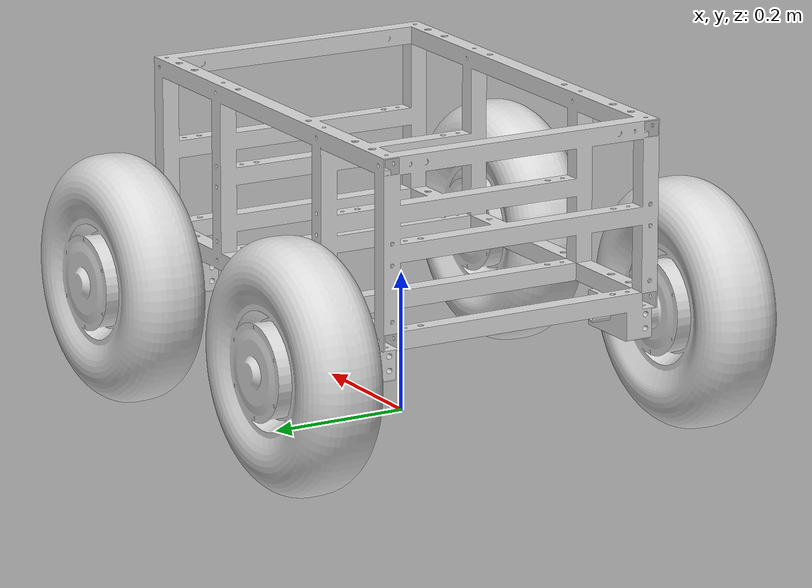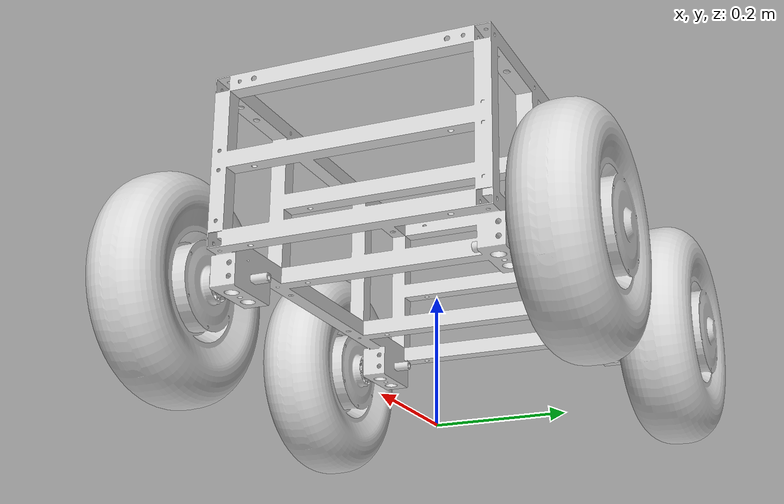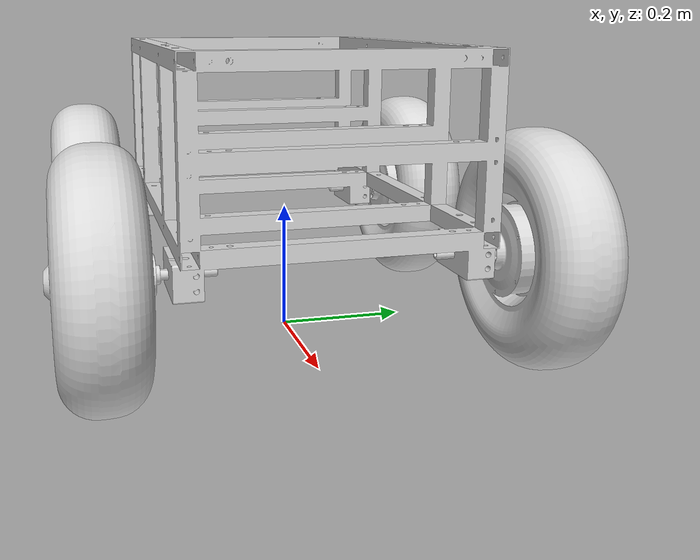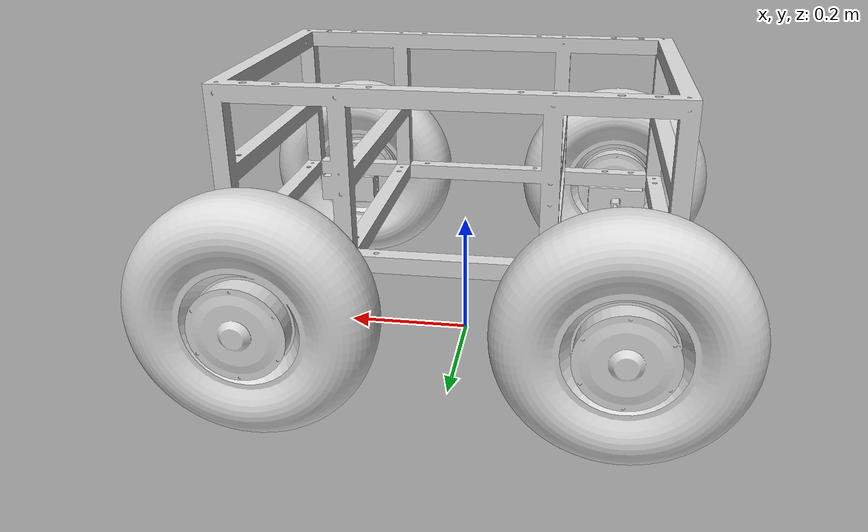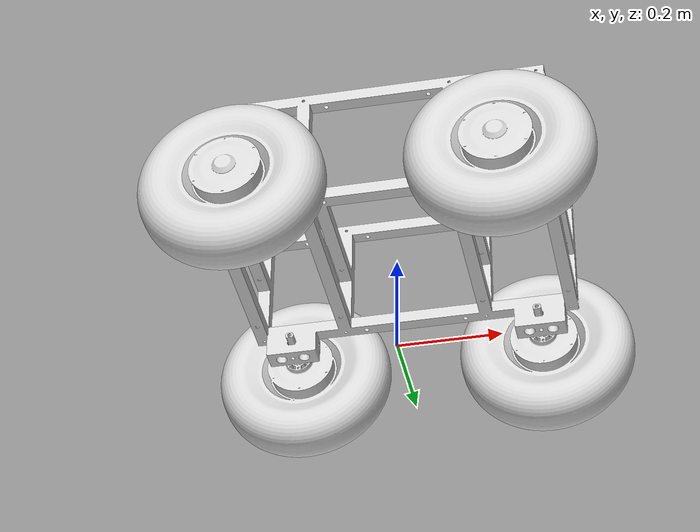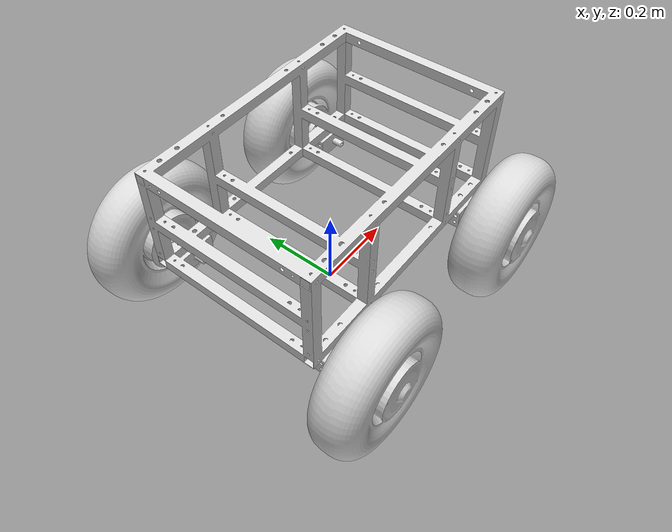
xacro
<?xml version="1.0"?>

<robot xmlns:xacro="http://ros.org/wiki/xacro" name="coroco" >
    <xacro:arg name="robot_namespace" default="/" />
    <xacro:arg name="urdf_extras" default="empty.urdf" />

    <xacro:include filename="$(find coroco_description)/urdf/coroco_wheel.xacro" />

    <!-- Variables -->
    <xacro:property name="M_PI" value="3.14159"/>

    <!-- Vehicle Geometries -->
    <xacro:property name="base_x_size" value="0.6500" />
    <xacro:property name="base_y_size" value="0.4400" />
    <xacro:property name="base_z_size" value="0.3100" />

    <xacro:property name="wheelbase" value="0.4960" />
    <xacro:property name="track" value="0.4600" />
    <xacro:property name="wheel_vertical_offset" value="-0.1575" />

    <xacro:property name="wheel_length" value="0.1150" />
    <xacro:property name="wheel_radius" value="0.1750" />

    <!-- static transform between /odom and /base_link -->
    <link name="odom"/>
    <joint name="odom_to_base_link=" type="fixed">
        <origin xyz="0 0 ${-wheel_vertical_offset + wheel_radius}" rpy="0 0 0" />
        <parent link="odom"/>
        <child link="base_link"/>
    </joint>

    <!-- Base link -->
    <link name="base_link">
        <visual>
            <origin xyz="0 0 0" rpy="0 0 0" />
            <geometry>
                <mesh filename="package://coroco_description/meshes/base_link.dae" />
            </geometry>
        </visual>
        <collision>
            <origin xyz="0 0 0.008" rpy="0 0 0" />
            <geometry>
                <box size="${base_x_size} ${base_y_size} ${base_z_size}"/>
            </geometry>
        </collision>
    </link>

    <link name="inertial_link">
        <inertial>
            <mass value="50" />
            <origin xyz="0.0 0.0 0.0" />
            <inertia ixx="2.288641" ixy="0" ixz="0" iyy="5.103976" iyz="0" izz="3.431465" />
        </inertial>
    </link>

    <joint name="inertial_joint" type="fixed">
        <origin xyz="0 0 0" rpy="0 0 0" />
        <parent link="base_link" />
        <child link="inertial_link" />
    </joint>

    <!-- For testing, hang the robot up in the air -->

    <!-- coroco wheel macros -->
    <!-- wheel labeled from 0 to 3, conter-clockwise, starting from front right wheel -->
    <!-- motor 1 and 2 (left side) are mechanically installed in a reversed direction -->
    <xacro:coroco_wheel wheel_prefix="front_right">
        <origin xyz="${wheelbase/2} ${-track/2} ${wheel_vertical_offset}" rpy="${M_PI} 0 0" />
    </xacro:coroco_wheel>
    <xacro:coroco_wheel wheel_prefix="front_left">
        <origin xyz="${wheelbase/2} ${track/2} ${wheel_vertical_offset}" rpy="0 0 0" />
    </xacro:coroco_wheel>
    <xacro:coroco_wheel wheel_prefix="rear_left">
        <origin xyz="${-wheelbase/2} ${track/2} ${wheel_vertical_offset}" rpy="0 0 0" />
    </xacro:coroco_wheel>
    <xacro:coroco_wheel wheel_prefix="rear_right">
        <origin xyz="${-wheelbase/2} ${-track/2} ${wheel_vertical_offset}" rpy="${M_PI} 0 0" />
    </xacro:coroco_wheel>

    <link name="front_mount" />

    <joint name="front_mount_joint" type="fixed">
        <origin xyz="0.325 0 0.112701" rpy="0 0 0" />
        <parent link="base_link" />
        <child link="front_mount" />
    </joint>

    <link name="rear_mount" />

    <joint name="rear_mount_joint" type="fixed">
        <origin xyz="-0.325 0 0.112701" rpy="0 0 0" />
        <parent link="base_link" />
        <child link="rear_mount" />
    </joint>

    <!-- Additional definitions -->
    <xacro:include filename="$(arg urdf_extras)" />

    <!-- Gazebo definitions  -->
    <xacro:include filename="$(find coroco_description)/urdf/coroco.gazebo" />
</robot>

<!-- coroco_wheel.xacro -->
<!--
 Created on Thu Oct 24 2024

 Author: Joonchen Liau
 Email: liaojuncheng123@foxmail.com

 Copyright (c) 2024 Tiante Intelligent Technology
-->

<robot xmlns:xacro="http://ros.org/wiki/xacro" name="coroco_wheel">
    <xacro:macro name="coroco_wheel" params="wheel_prefix *joint_pose">
        <link name="${wheel_prefix}_wheel_link">
            <inertial>
                <mass value="8" />
                <origin xyz="0 0 0" />
                <inertia ixx="0.1171" ixy="0" ixz="0" iyy="0.1361" iyz="0" izz="0.1171" />
            </inertial>
            <visual>
                <origin xyz="0 0 0" rpy="0 0 0" />
                <geometry>
                    <mesh filename="package://coroco_description/meshes/wheel.dae" />
                </geometry>
            </visual>
            <collision>
                <origin xyz="0 0 0" rpy="${M_PI/2} 0 0" />
                <geometry>
                    <cylinder length="${wheel_length}" radius="${wheel_radius}" />
                </geometry>
                     <contact>
                         <ode>
                        <min_depth>0.001</min_depth>
                         </ode>
                    </contact>
            </collision>
        </link>

        <joint name="${wheel_prefix}_wheel" type="continuous">
            <parent link="base_link"/>
            <child link="${wheel_prefix}_wheel_link"/>
            <xacro:insert_block name="joint_pose"/>
            <axis xyz="0 -1 0" rpy="0 0 0" />
            <dynamics damping="0.0" friction="20"/>
        </joint>
    </xacro:macro>
</robot>
